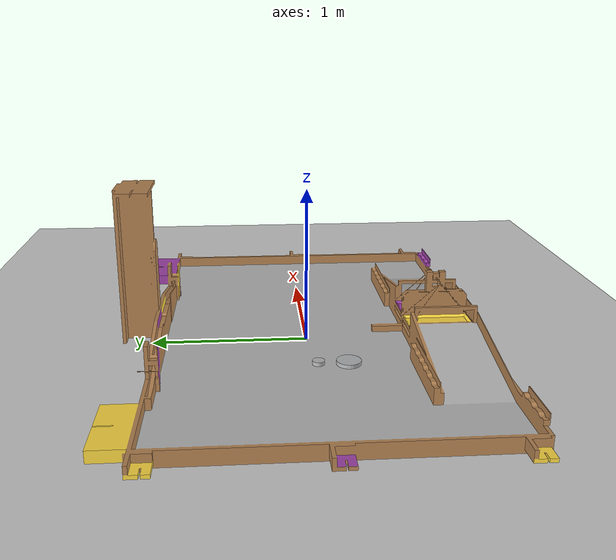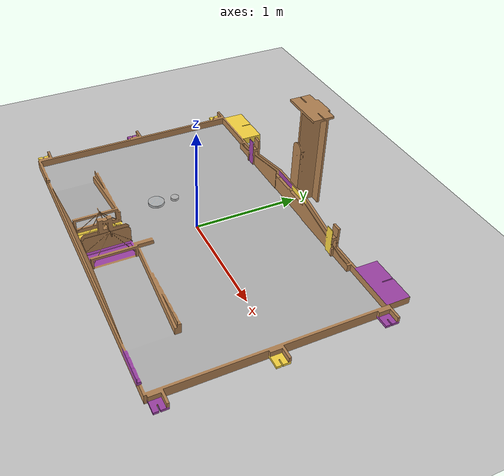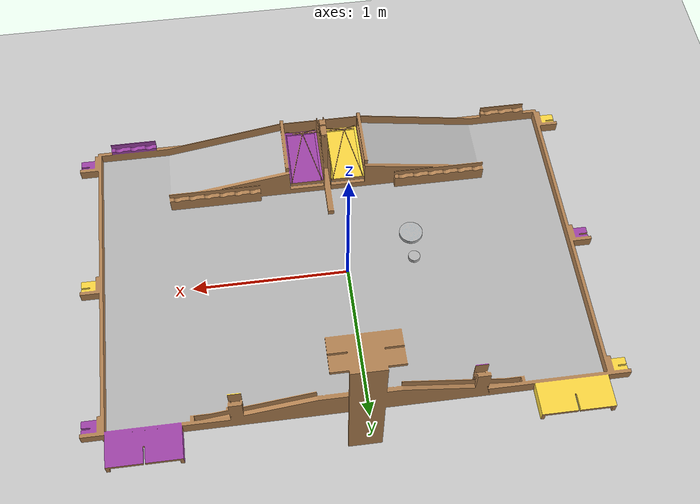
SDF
<sdf version="1.6">
 <world name="default">
  <light name="sun" type="directional">
   <pose>0 0 10 0 -0 0</pose>
   <diffuse>0.8 0.8 0.8 1</diffuse>
   <specular>0.2 0.2 0.2 1</specular>
   <attenuation>
    <range>1000</range>
    <constant>0.9</constant>
    <linear>0.01</linear>
    <quadratic>0.001</quadratic>
   </attenuation>
   <direction>-0.5 0.1 -0.9</direction>
  </light>
  <model name="ground_plane">
   <static>1</static>
   <link name="link">
    <collision name="collision">
     <geometry><plane><normal>0 0 1</normal><size>100 100</size></plane></geometry>
     <surface><friction><ode><mu>100</mu><mu2>50</mu2></ode></friction></surface>
    </collision>
    <visual name="visual">
     <cast_shadows>0</cast_shadows>
     <geometry><plane><normal>0 0 1</normal><size>100 100</size></plane></geometry>
     <material>
      <script><uri>file://media/materials/scripts/gazebo.material</uri><name>Gazebo/Grey</name></script>
     </material>
    </visual>
   </link>
  </model>
  <gravity>0 0 -9.8</gravity>
  <magnetic_field>6e-06 2.3e-05 -4.2e-05</magnetic_field>
  <atmosphere type="adiabatic"/>
  <physics name="default_physics" default="0" type="ode">
   <max_step_size>0.001</max_step_size>
   <real_time_factor>1</real_time_factor>
   <real_time_update_rate>1000</real_time_update_rate>
  </physics>
  <scene><ambient>0.4 0.4 0.4 1</ambient><background>0.7 0.7 0.7 1</background><shadows>1</shadows></scene>
  <spherical_coordinates>
   <surface_model>EARTH_WGS84</surface_model>
   <latitude_deg>0</latitude_deg>
   <longitude_deg>0</longitude_deg>
   <elevation>0</elevation>
   <heading_deg>0</heading_deg>
  </spherical_coordinates>
  <model name="eurobot2019">
   <link name="base_link">
    <inertial>
     <pose>1.5 -0.97131 0.064683 0 -0 0</pose>
     <mass>500</mass>
     <inertia><ixx>117</ixx><ixy>0</ixy><ixz>0</ixz><iyy>162</iyy><iyz>0</iyz><izz>270</izz></inertia>
    </inertial>
    <visual name="visual">
     <geometry><mesh><uri>model://eurobot2019_field/meshes/base_link1.dae</uri></mesh></geometry>
    </visual>
    <collision name="collision">
     <geometry><mesh><uri>model://eurobot2019_field/meshes/base_link1.dae</uri></mesh></geometry>
    </collision>
   </link>
   <pose>-1.4465 0.935598 -0.000325 -8e-06 -0 0.000104</pose>
  </model>
  <light name="user_directional_light_0" type="directional">
   <pose>-1.45959 2.80311 1 0 -0 0</pose>
   <diffuse>0.5 0.5 0.5 1</diffuse>
   <specular>0.1 0.1 0.1 1</specular>
   <direction>0.1 0.1 -0.9</direction>
   <attenuation>
    <range>20</range>
    <constant>0.5</constant>
    <linear>0.01</linear>
    <quadratic>0.001</quadratic>
   </attenuation>
  </light>
  <light name="user_point_light_0" type="point">
   <pose>0.000583 0.004379 1 0 -0 0</pose>
   <diffuse>0.5 0.5 0.5 1</diffuse>
   <specular>0.1 0.1 0.1 1</specular>
   <attenuation>
    <range>20</range>
    <constant>0.5</constant>
    <linear>0.01</linear>
    <quadratic>0.001</quadratic>
   </attenuation>
   <cast_shadows>0</cast_shadows>
   <direction>0 0 -1</direction>
  </light>
  <model name="atom1">
   <link name="link">
    <pose>0 0 0.0125 0 -0 0</pose>
    <inertial>
     <pose>0 0 0.0125 0 -0 0</pose>
     <mass>0.06</mass>
     <inertia><ixx>0.0005</ixx><ixy>0</ixy><ixz>0</ixz><iyy>0.0005</iyy><iyz>0</iyz><izz>0.0001</izz></inertia>
    </inertial>
    <collision name="collision">
     <geometry><mesh><uri>model://atom1/meshes/atom1.dae</uri></mesh></geometry>
    </collision>
    <visual name="visual"><geometry><mesh><uri>model://atom1/meshes/atom1.dae</uri></mesh></geometry></visual>
   </link>
   <pose>-0.444638 -0.222363 0.009684 0 -7e-06 -0.000666</pose>
  </model>
  <model name="atom2">
   <link name="link">
    <pose>0 0 0.0125 0 -0 0</pose>
    <inertial>
     <pose>0 0 0.0125 0 -0 0</pose>
     <mass>0.12</mass>
     <inertia><ixx>0.0005</ixx><ixy>0</ixy><ixz>0</ixz><iyy>0.0005</iyy><iyz>0</iyz><izz>0.0001</izz></inertia>
    </inertial>
    <collision name="collision">
     <geometry><mesh><uri>model://atom2/meshes/atom2.dae</uri></mesh></geometry>
    </collision>
    <visual name="visual"><geometry><mesh><uri>model://atom2/meshes/atom2.dae</uri></mesh></geometry></visual>
   </link>
   <pose>-0.436595 -0.039564 0.009682 -3e-06 -2.3e-05 -0.001511</pose>
  </model>
 </world>
</sdf>
